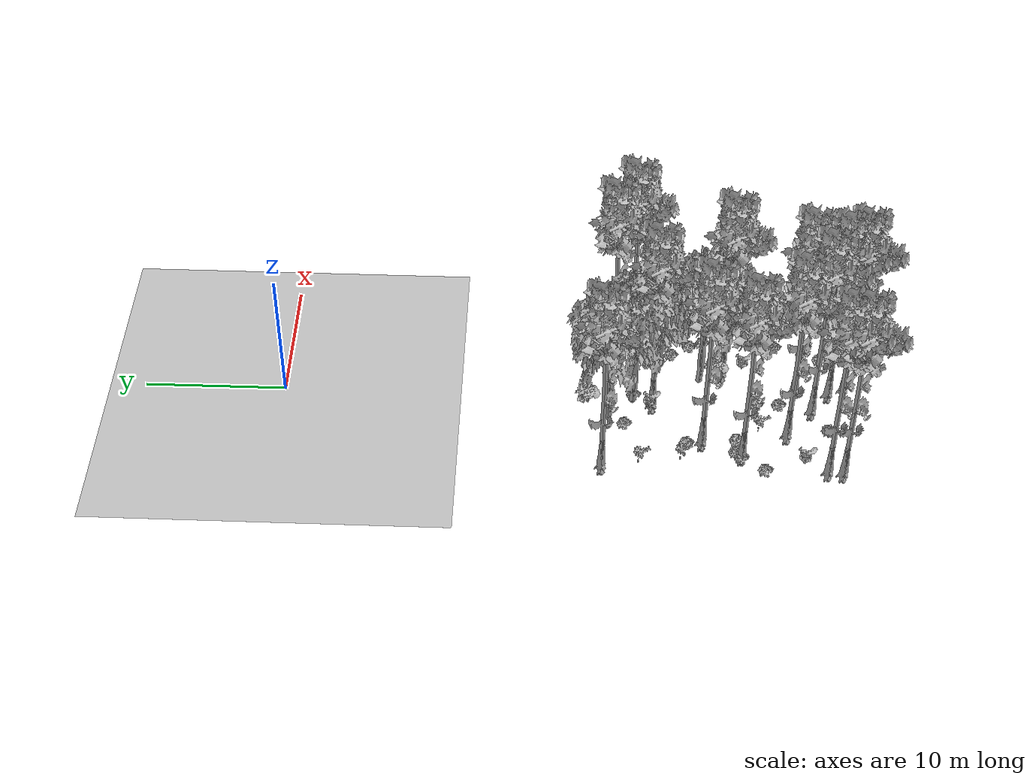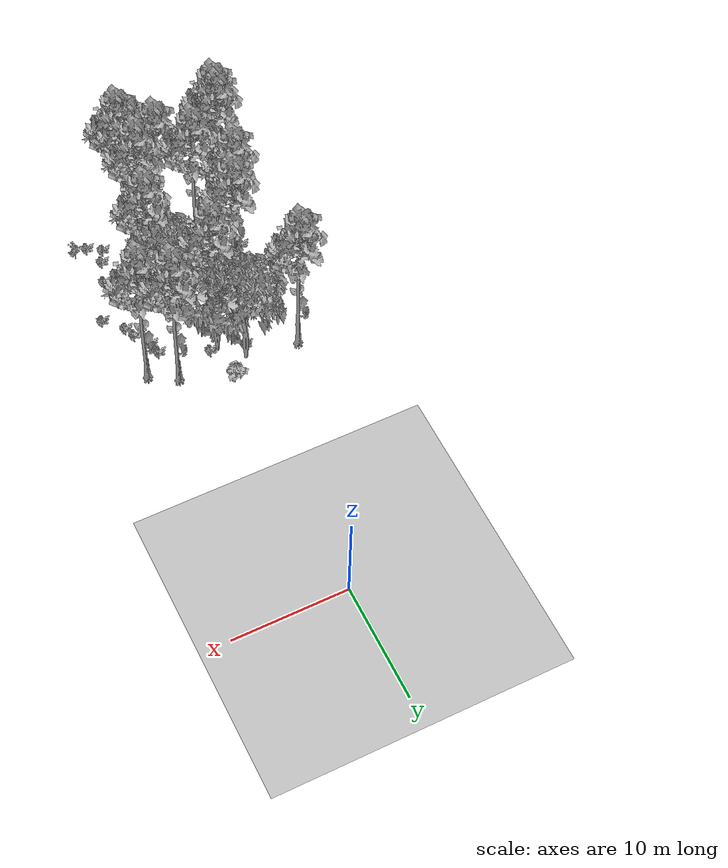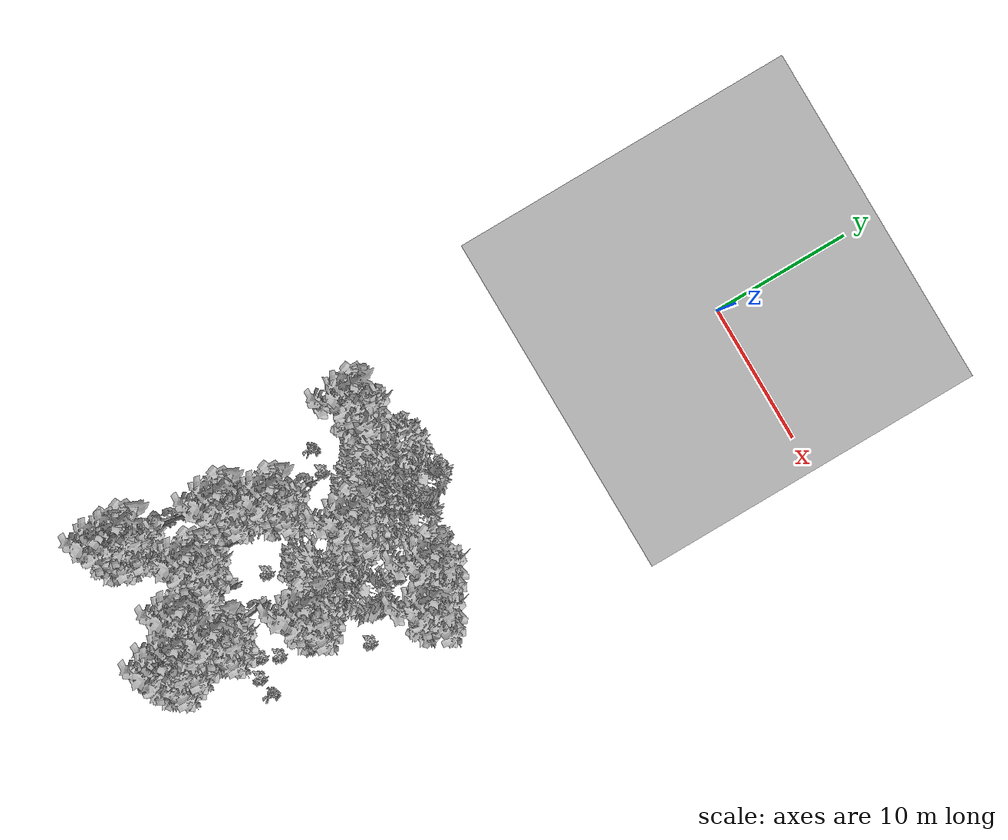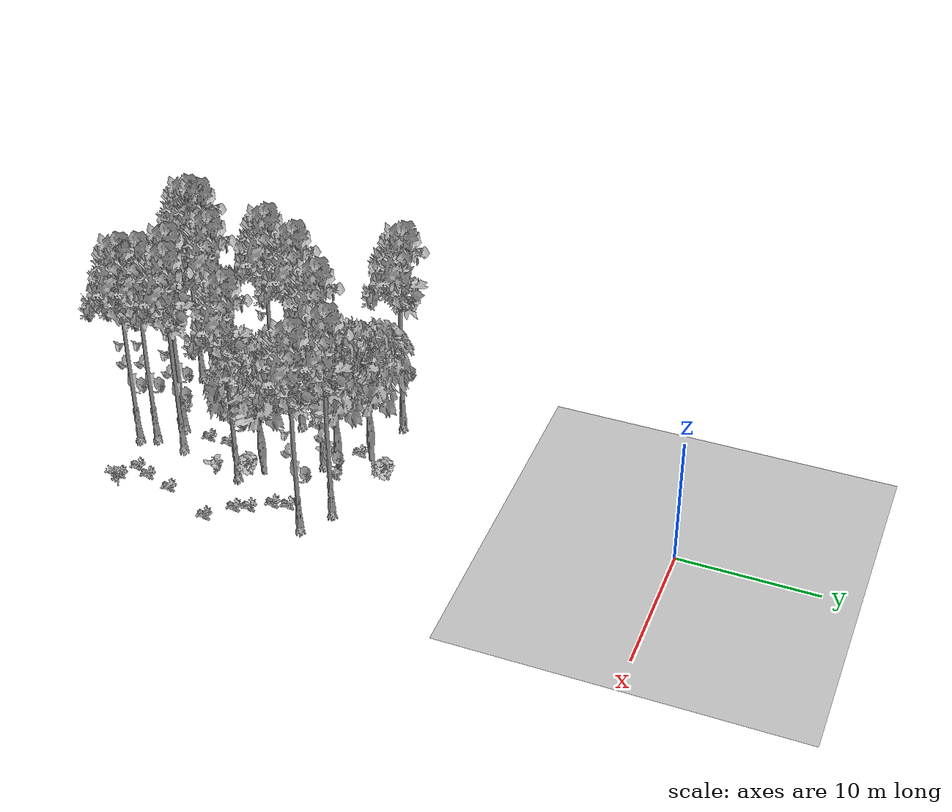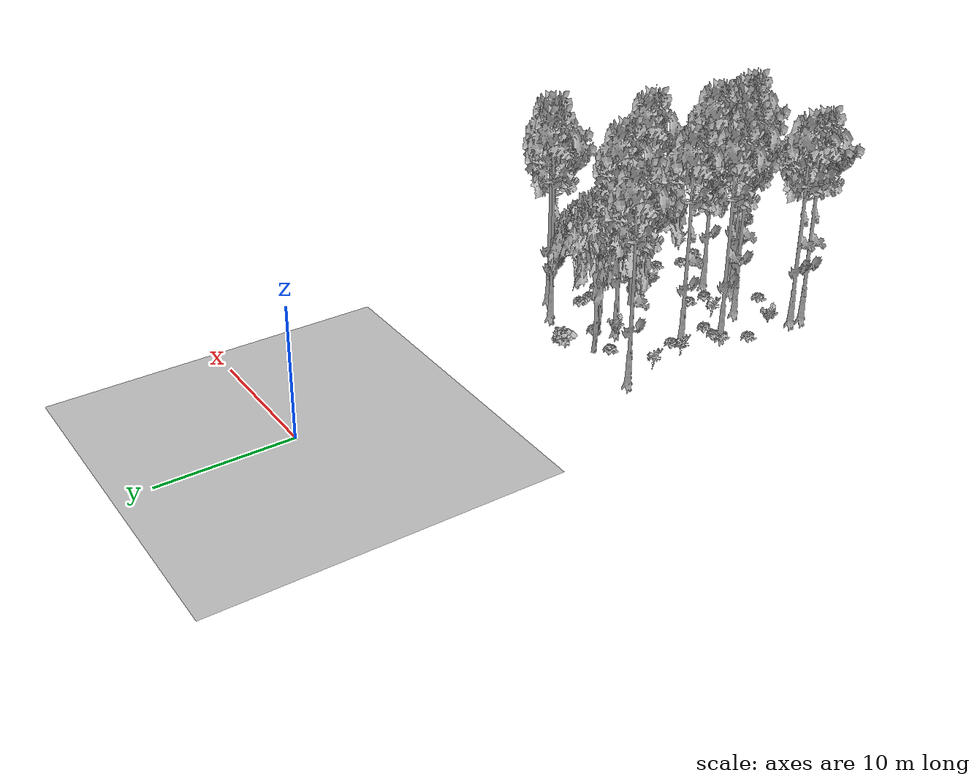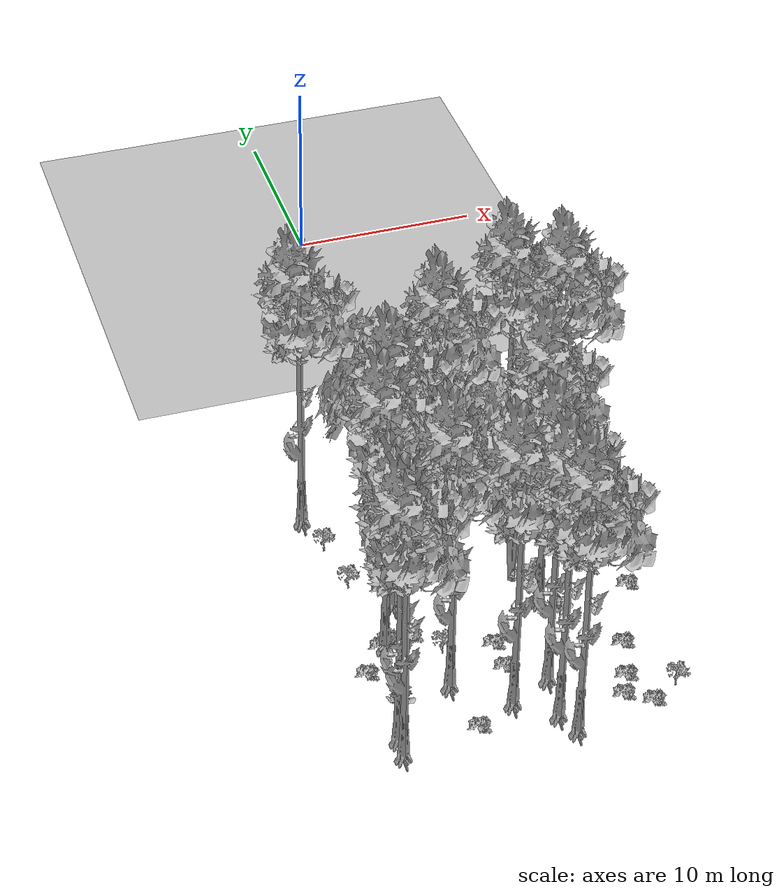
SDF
<sdf version="1.7">
 <world name="default">
  <model name="ground_plane">
   <static>1</static>
   <link name="link">
    <collision name="collision">
     <pose>-50 0 0 0 -0 0</pose>
     <geometry><plane><normal>0 0 1</normal><size>80 80</size></plane></geometry>
     <surface><contact><ode><min_depth>0.01</min_depth><max_vel>0</max_vel></ode></contact></surface>
    </collision>
    <visual name="grass">
     <cast_shadows>0</cast_shadows>
     <geometry>
      <mesh>
       <scale>0.46714285714285714 0.46714285714285714 0.1</scale>
       <uri>file://grass_plane/meshes/grass_plane.dae</uri>
      </mesh>
     </geometry>
    </visual>
   </link>
  </model>
  <model name="Tree 28">
   <static>1</static>
   <pose>-0.35004795752335127 -24.8608026252684 0 1.57079 -0 0</pose>
   <link name="link">
    <collision name="collision">
     <geometry><mesh><scale>3.5 5 3.5</scale><uri>model://tree_2/meshes/tree_2.obj</uri></mesh></geometry>
    </collision>
    <visual name="visual">
     <geometry><mesh><scale>3.5 5 3.5</scale><uri>model://tree_2/meshes/tree_2.obj</uri></mesh></geometry>
    </visual>
   </link>
  </model>
  <model name="Tree 94">
   <static>1</static>
   <pose>-3.228023778062635 -35.577913593681544 0 1.57079 -0 0</pose>
   <link name="link">
    <collision name="collision">
     <geometry><mesh><scale>3.5 5 3.5</scale><uri>model://tree_9/meshes/tree_9.obj</uri></mesh></geometry>
    </collision>
    <visual name="visual">
     <geometry><mesh><scale>3.5 5 3.5</scale><uri>model://tree_9/meshes/tree_9.obj</uri></mesh></geometry>
    </visual>
   </link>
  </model>
  <model name="Tree 98">
   <static>1</static>
   <pose>6.0714699506516325 -24.897921704835273 0 1.57079 -0 0</pose>
   <link name="link">
    <collision name="collision">
     <geometry><mesh><scale>3.5 5 3.5</scale><uri>model://tree_9/meshes/tree_9.obj</uri></mesh></geometry>
    </collision>
    <visual name="visual">
     <geometry><mesh><scale>3.5 5 3.5</scale><uri>model://tree_9/meshes/tree_9.obj</uri></mesh></geometry>
    </visual>
   </link>
  </model>
  <model name="Tree 110">
   <static>1</static>
   <pose>-6.6040914530823756 -22.57773959028632 0 1.57079 -0 0</pose>
   <link name="link">
    <collision name="collision">
     <geometry><mesh><scale>3.5 5 3.5</scale><uri>model://tree_9/meshes/tree_9.obj</uri></mesh></geometry>
    </collision>
    <visual name="visual">
     <geometry><mesh><scale>3.5 5 3.5</scale><uri>model://tree_9/meshes/tree_9.obj</uri></mesh></geometry>
    </visual>
   </link>
  </model>
  <model name="Tree 134">
   <static>1</static>
   <pose>0.9733004366003541 -38.81523096433214 0 1.57079 -0 0</pose>
   <link name="link">
    <collision name="collision">
     <geometry><mesh><scale>3.5 5 3.5</scale><uri>model://tree_9/meshes/tree_9.obj</uri></mesh></geometry>
    </collision>
    <visual name="visual">
     <geometry><mesh><scale>3.5 5 3.5</scale><uri>model://tree_9/meshes/tree_9.obj</uri></mesh></geometry>
    </visual>
   </link>
  </model>
  <model name="Tree 158">
   <static>1</static>
   <pose>-2.1560380082240655 -23.12411436678567 0 1.57079 -0 0</pose>
   <link name="link">
    <collision name="collision">
     <geometry><mesh><scale>3.5 5 3.5</scale><uri>model://tree_2/meshes/tree_2.obj</uri></mesh></geometry>
    </collision>
    <visual name="visual">
     <geometry><mesh><scale>3.5 5 3.5</scale><uri>model://tree_2/meshes/tree_2.obj</uri></mesh></geometry>
    </visual>
   </link>
  </model>
  <model name="Tree 274">
   <static>1</static>
   <pose>-4.102650986573003 -29.590613901555074 0 1.57079 -0 0</pose>
   <link name="link">
    <collision name="collision">
     <geometry><mesh><scale>3.5 5 3.5</scale><uri>model://tree_9/meshes/tree_9.obj</uri></mesh></geometry>
    </collision>
    <visual name="visual">
     <geometry><mesh><scale>3.5 5 3.5</scale><uri>model://tree_9/meshes/tree_9.obj</uri></mesh></geometry>
    </visual>
   </link>
  </model>
  <model name="Tree 332">
   <static>1</static>
   <pose>3.8407860990339913 -23.505030935545825 0 1.57079 -0 0</pose>
   <link name="link">
    <collision name="collision">
     <geometry><mesh><scale>3.5 5 3.5</scale><uri>model://tree_9/meshes/tree_9.obj</uri></mesh></geometry>
    </collision>
    <visual name="visual">
     <geometry><mesh><scale>3.5 5 3.5</scale><uri>model://tree_9/meshes/tree_9.obj</uri></mesh></geometry>
    </visual>
   </link>
  </model>
  <model name="Tree 376">
   <static>1</static>
   <pose>1.8607842351019173 -29.678774806075367 0 1.57079 -0 0</pose>
   <link name="link">
    <collision name="collision">
     <geometry><mesh><scale>3.5 5 3.5</scale><uri>model://tree_2/meshes/tree_2.obj</uri></mesh></geometry>
    </collision>
    <visual name="visual">
     <geometry><mesh><scale>3.5 5 3.5</scale><uri>model://tree_2/meshes/tree_2.obj</uri></mesh></geometry>
    </visual>
   </link>
  </model>
  <model name="Tree 456">
   <static>1</static>
   <pose>1.4662041682643476 -39.965928214971555 0 1.57079 -0 0</pose>
   <link name="link">
    <collision name="collision">
     <geometry><mesh><scale>3.5 5 3.5</scale><uri>model://tree_9/meshes/tree_9.obj</uri></mesh></geometry>
    </collision>
    <visual name="visual">
     <geometry><mesh><scale>3.5 5 3.5</scale><uri>model://tree_9/meshes/tree_9.obj</uri></mesh></geometry>
    </visual>
   </link>
  </model>
  <model name="Tree 516">
   <static>1</static>
   <pose>1.2992492899828392 -36.465847893020396 0 1.57079 -0 0</pose>
   <link name="link">
    <collision name="collision">
     <geometry><mesh><scale>3.5 5 3.5</scale><uri>model://tree_9/meshes/tree_9.obj</uri></mesh></geometry>
    </collision>
    <visual name="visual">
     <geometry><mesh><scale>3.5 5 3.5</scale><uri>model://tree_9/meshes/tree_9.obj</uri></mesh></geometry>
    </visual>
   </link>
  </model>
  <model name="Tree 523">
   <static>1</static>
   <pose>-6.677941656169146 -39.1709177209787 0 1.57079 -0 0</pose>
   <link name="link">
    <collision name="collision">
     <geometry><mesh><scale>3.5 5 3.5</scale><uri>model://tree_9/meshes/tree_9.obj</uri></mesh></geometry>
    </collision>
    <visual name="visual">
     <geometry><mesh><scale>3.5 5 3.5</scale><uri>model://tree_9/meshes/tree_9.obj</uri></mesh></geometry>
    </visual>
   </link>
  </model>
  <model name="Tree 526">
   <static>1</static>
   <pose>-0.7942679597277333 -37.48929218629961 0 1.57079 -0 0</pose>
   <link name="link">
    <collision name="collision">
     <geometry><mesh><scale>3.5 5 3.5</scale><uri>model://tree_9/meshes/tree_9.obj</uri></mesh></geometry>
    </collision>
    <visual name="visual">
     <geometry><mesh><scale>3.5 5 3.5</scale><uri>model://tree_9/meshes/tree_9.obj</uri></mesh></geometry>
    </visual>
   </link>
  </model>
  <model name="Tree 537">
   <static>1</static>
   <pose>-0.6117980295319683 -26.211494960041676 0 1.57079 -0 0</pose>
   <link name="link">
    <collision name="collision">
     <geometry><mesh><scale>3.5 5 3.5</scale><uri>model://tree_9/meshes/tree_9.obj</uri></mesh></geometry>
    </collision>
    <visual name="visual">
     <geometry><mesh><scale>3.5 5 3.5</scale><uri>model://tree_9/meshes/tree_9.obj</uri></mesh></geometry>
    </visual>
   </link>
  </model>
  <model name="Tree 540">
   <static>1</static>
   <pose>-5.359821932581099 -32.30442362448044 0 1.57079 -0 0</pose>
   <link name="link">
    <collision name="collision">
     <geometry><mesh><scale>3.5 5 3.5</scale><uri>model://tree_9/meshes/tree_9.obj</uri></mesh></geometry>
    </collision>
    <visual name="visual">
     <geometry><mesh><scale>3.5 5 3.5</scale><uri>model://tree_9/meshes/tree_9.obj</uri></mesh></geometry>
    </visual>
   </link>
  </model>
  <model name="Tree 550">
   <static>1</static>
   <pose>2.7567984938920063 -31.34955749039804 0 1.57079 -0 0</pose>
   <link name="link">
    <collision name="collision">
     <geometry><mesh><scale>3.5 5 3.5</scale><uri>model://tree_9/meshes/tree_9.obj</uri></mesh></geometry>
    </collision>
    <visual name="visual">
     <geometry><mesh><scale>3.5 5 3.5</scale><uri>model://tree_9/meshes/tree_9.obj</uri></mesh></geometry>
    </visual>
   </link>
  </model>
  <model name="Tree 637">
   <static>1</static>
   <pose>-6.597392145942223 -38.142250448326536 0 1.57079 -0 0</pose>
   <link name="link">
    <collision name="collision">
     <geometry><mesh><scale>3.5 5 3.5</scale><uri>model://tree_9/meshes/tree_9.obj</uri></mesh></geometry>
    </collision>
    <visual name="visual">
     <geometry><mesh><scale>3.5 5 3.5</scale><uri>model://tree_9/meshes/tree_9.obj</uri></mesh></geometry>
    </visual>
   </link>
  </model>
  <model name="Bush 3">
   <static>1</static>
   <pose>5.521125210237997 -39.28202678002643 0 1.57079 -0 0</pose>
   <link name="link">
    <collision name="collision">
     <geometry><mesh><scale>2 2 2</scale><uri>model://bush_2/meshes/bush_2.obj</uri></mesh></geometry>
     <surface><contact><collide_without_contact>false</collide_without_contact></contact></surface>
    </collision>
    <visual name="visual">
     <geometry><mesh><scale>2 2 2</scale><uri>model://bush_2/meshes/bush_2.obj</uri></mesh></geometry>
    </visual>
   </link>
  </model>
  <model name="Bush 16">
   <static>1</static>
   <pose>-0.3675367399814746 -35.24628562463606 0 1.57079 -0 0</pose>
   <link name="link">
    <collision name="collision">
     <geometry><mesh><scale>2 2 2</scale><uri>model://bush_2/meshes/bush_2.obj</uri></mesh></geometry>
     <surface><contact><collide_without_contact>false</collide_without_contact></contact></surface>
    </collision>
    <visual name="visual">
     <geometry><mesh><scale>2 2 2</scale><uri>model://bush_2/meshes/bush_2.obj</uri></mesh></geometry>
    </visual>
   </link>
  </model>
  <model name="Bush 17">
   <static>1</static>
   <pose>6.842934596740989 -38.67601373014332 0 1.57079 -0 0</pose>
   <link name="link">
    <collision name="collision">
     <geometry><mesh><scale>2 2 2</scale><uri>model://bush_5/meshes/bush_5.obj</uri></mesh></geometry>
     <surface><contact><collide_without_contact>false</collide_without_contact></contact></surface>
    </collision>
    <visual name="visual">
     <geometry><mesh><scale>2 2 2</scale><uri>model://bush_5/meshes/bush_5.obj</uri></mesh></geometry>
    </visual>
   </link>
  </model>
  <model name="Bush 24">
   <static>1</static>
   <pose>-0.835177802570982 -26.007142781201935 0 1.57079 -0 0</pose>
   <link name="link">
    <collision name="collision">
     <geometry><mesh><scale>2 2 2</scale><uri>model://bush_0/meshes/bush_0.obj</uri></mesh></geometry>
     <surface><contact><collide_without_contact>false</collide_without_contact></contact></surface>
    </collision>
    <visual name="visual">
     <geometry><mesh><scale>2 2 2</scale><uri>model://bush_0/meshes/bush_0.obj</uri></mesh></geometry>
    </visual>
   </link>
  </model>
  <model name="Bush 27">
   <static>1</static>
   <pose>0.2789472402041042 -24.950369477482354 0 1.57079 -0 0</pose>
   <link name="link">
    <collision name="collision">
     <geometry><mesh><scale>2 2 2</scale><uri>model://bush_2/meshes/bush_2.obj</uri></mesh></geometry>
     <surface><contact><collide_without_contact>false</collide_without_contact></contact></surface>
    </collision>
    <visual name="visual">
     <geometry><mesh><scale>2 2 2</scale><uri>model://bush_2/meshes/bush_2.obj</uri></mesh></geometry>
    </visual>
   </link>
  </model>
  <model name="Bush 29">
   <static>1</static>
   <pose>4.891215432030563 -37.38537468686049 0 1.57079 -0 0</pose>
   <link name="link">
    <collision name="collision">
     <geometry><mesh><scale>2 2 2</scale><uri>model://bush_2/meshes/bush_2.obj</uri></mesh></geometry>
     <surface><contact><collide_without_contact>false</collide_without_contact></contact></surface>
    </collision>
    <visual name="visual">
     <geometry><mesh><scale>2 2 2</scale><uri>model://bush_2/meshes/bush_2.obj</uri></mesh></geometry>
    </visual>
   </link>
  </model>
  <model name="Bush 70">
   <static>1</static>
   <pose>-5.572909275459736 -32.307662902812424 0 1.57079 -0 0</pose>
   <link name="link">
    <collision name="collision">
     <geometry><mesh><scale>2 2 2</scale><uri>model://bush_2/meshes/bush_2.obj</uri></mesh></geometry>
     <surface><contact><collide_without_contact>false</collide_without_contact></contact></surface>
    </collision>
    <visual name="visual">
     <geometry><mesh><scale>2 2 2</scale><uri>model://bush_2/meshes/bush_2.obj</uri></mesh></geometry>
    </visual>
   </link>
  </model>
  <model name="Bush 73">
   <static>1</static>
   <pose>-2.5980775407242263 -24.240391189324264 0 1.57079 -0 0</pose>
   <link name="link">
    <collision name="collision">
     <geometry><mesh><scale>2 2 2</scale><uri>model://bush_2/meshes/bush_2.obj</uri></mesh></geometry>
     <surface><contact><collide_without_contact>false</collide_without_contact></contact></surface>
    </collision>
    <visual name="visual">
     <geometry><mesh><scale>2 2 2</scale><uri>model://bush_2/meshes/bush_2.obj</uri></mesh></geometry>
    </visual>
   </link>
  </model>
  <model name="Bush 98">
   <static>1</static>
   <pose>-6.7160506081877145 -33.88411545947584 0 1.57079 -0 0</pose>
   <link name="link">
    <collision name="collision">
     <geometry><mesh><scale>2 2 2</scale><uri>model://bush_2/meshes/bush_2.obj</uri></mesh></geometry>
     <surface><contact><collide_without_contact>false</collide_without_contact></contact></surface>
    </collision>
    <visual name="visual">
     <geometry><mesh><scale>2 2 2</scale><uri>model://bush_2/meshes/bush_2.obj</uri></mesh></geometry>
    </visual>
   </link>
  </model>
  <model name="Bush 106">
   <static>1</static>
   <pose>4.333909710114646 -38.523586245416354 0 1.57079 -0 0</pose>
   <link name="link">
    <collision name="collision">
     <geometry><mesh><scale>2 2 2</scale><uri>model://bush_2/meshes/bush_2.obj</uri></mesh></geometry>
     <surface><contact><collide_without_contact>false</collide_without_contact></contact></surface>
    </collision>
    <visual name="visual">
     <geometry><mesh><scale>2 2 2</scale><uri>model://bush_2/meshes/bush_2.obj</uri></mesh></geometry>
    </visual>
   </link>
  </model>
  <model name="Bush 136">
   <static>1</static>
   <pose>4.249319830086613 -26.667728989168225 0 1.57079 -0 0</pose>
   <link name="link">
    <collision name="collision">
     <geometry><mesh><scale>2 2 2</scale><uri>model://bush_2/meshes/bush_2.obj</uri></mesh></geometry>
     <surface><contact><collide_without_contact>false</collide_without_contact></contact></surface>
    </collision>
    <visual name="visual">
     <geometry><mesh><scale>2 2 2</scale><uri>model://bush_2/meshes/bush_2.obj</uri></mesh></geometry>
    </visual>
   </link>
  </model>
  <model name="Bush 139">
   <static>1</static>
   <pose>-4.332099621171693 -28.555763570622776 0 1.57079 -0 0</pose>
   <link name="link">
    <collision name="collision">
     <geometry><mesh><scale>2 2 2</scale><uri>model://bush_2/meshes/bush_2.obj</uri></mesh></geometry>
     <surface><contact><collide_without_contact>false</collide_without_contact></contact></surface>
    </collision>
    <visual name="visual">
     <geometry><mesh><scale>2 2 2</scale><uri>model://bush_2/meshes/bush_2.obj</uri></mesh></geometry>
    </visual>
   </link>
  </model>
  <model name="Bush 151">
   <static>1</static>
   <pose>-2.7978785210255666 -38.56932177063935 0 1.57079 -0 0</pose>
   <link name="link">
    <collision name="collision">
     <geometry><mesh><scale>2 2 2</scale><uri>model://bush_2/meshes/bush_2.obj</uri></mesh></geometry>
     <surface><contact><collide_without_contact>false</collide_without_contact></contact></surface>
    </collision>
    <visual name="visual">
     <geometry><mesh><scale>2 2 2</scale><uri>model://bush_2/meshes/bush_2.obj</uri></mesh></geometry>
    </visual>
   </link>
  </model>
  <model name="Bush 215">
   <static>1</static>
   <pose>-5.0858464327845425 -31.931757612327274 0 1.57079 -0 0</pose>
   <link name="link">
    <collision name="collision">
     <geometry><mesh><scale>2 2 2</scale><uri>model://bush_2/meshes/bush_2.obj</uri></mesh></geometry>
     <surface><contact><collide_without_contact>false</collide_without_contact></contact></surface>
    </collision>
    <visual name="visual">
     <geometry><mesh><scale>2 2 2</scale><uri>model://bush_2/meshes/bush_2.obj</uri></mesh></geometry>
    </visual>
   </link>
  </model>
  <model name="Bush 231">
   <static>1</static>
   <pose>-3.935367979172362 -32.06643504445288 0 1.57079 -0 0</pose>
   <link name="link">
    <collision name="collision">
     <geometry><mesh><scale>2 2 2</scale><uri>model://bush_2/meshes/bush_2.obj</uri></mesh></geometry>
     <surface><contact><collide_without_contact>false</collide_without_contact></contact></surface>
    </collision>
    <visual name="visual">
     <geometry><mesh><scale>2 2 2</scale><uri>model://bush_2/meshes/bush_2.obj</uri></mesh></geometry>
    </visual>
   </link>
  </model>
  <model name="Bush 272">
   <static>1</static>
   <pose>-6.205233438063367 -25.118922884536197 0 1.57079 -0 0</pose>
   <link name="link">
    <collision name="collision">
     <geometry><mesh><scale>2 2 2</scale><uri>model://bush_5/meshes/bush_5.obj</uri></mesh></geometry>
     <surface><contact><collide_without_contact>false</collide_without_contact></contact></surface>
    </collision>
    <visual name="visual">
     <geometry><mesh><scale>2 2 2</scale><uri>model://bush_5/meshes/bush_5.obj</uri></mesh></geometry>
    </visual>
   </link>
  </model>
  <model name="Bush 279">
   <static>1</static>
   <pose>2.4300476735757073 -30.91313371599524 0 1.57079 -0 0</pose>
   <link name="link">
    <collision name="collision">
     <geometry><mesh><scale>2 2 2</scale><uri>model://bush_1/meshes/bush_1.obj</uri></mesh></geometry>
     <surface><contact><collide_without_contact>false</collide_without_contact></contact></surface>
    </collision>
    <visual name="visual">
     <geometry><mesh><scale>2 2 2</scale><uri>model://bush_1/meshes/bush_1.obj</uri></mesh></geometry>
    </visual>
   </link>
  </model>
  <model name="Bush 316">
   <static>1</static>
   <pose>-0.3494811167304661 -33.668592915770205 0 1.57079 -0 0</pose>
   <link name="link">
    <collision name="collision">
     <geometry><mesh><scale>2 2 2</scale><uri>model://bush_2/meshes/bush_2.obj</uri></mesh></geometry>
     <surface><contact><collide_without_contact>false</collide_without_contact></contact></surface>
    </collision>
    <visual name="visual">
     <geometry><mesh><scale>2 2 2</scale><uri>model://bush_2/meshes/bush_2.obj</uri></mesh></geometry>
    </visual>
   </link>
  </model>
  <model name="Bush 318">
   <static>1</static>
   <pose>5.39675265812059 -29.129669789782355 0 1.57079 -0 0</pose>
   <link name="link">
    <collision name="collision">
     <geometry><mesh><scale>2 2 2</scale><uri>model://bush_2/meshes/bush_2.obj</uri></mesh></geometry>
     <surface><contact><collide_without_contact>false</collide_without_contact></contact></surface>
    </collision>
    <visual name="visual">
     <geometry><mesh><scale>2 2 2</scale><uri>model://bush_2/meshes/bush_2.obj</uri></mesh></geometry>
    </visual>
   </link>
  </model>
  <model name="Bush 343">
   <static>1</static>
   <pose>-0.4707603421779254 -21.689186157296987 0 1.57079 -0 0</pose>
   <link name="link">
    <collision name="collision">
     <geometry><mesh><scale>2 2 2</scale><uri>model://bush_1/meshes/bush_1.obj</uri></mesh></geometry>
     <surface><contact><collide_without_contact>false</collide_without_contact></contact></surface>
    </collision>
    <visual name="visual">
     <geometry><mesh><scale>2 2 2</scale><uri>model://bush_1/meshes/bush_1.obj</uri></mesh></geometry>
    </visual>
   </link>
  </model>
  <model name="Bush 419">
   <static>1</static>
   <pose>4.469799626389836 -27.753183847965825 0 1.57079 -0 0</pose>
   <link name="link">
    <collision name="collision">
     <geometry><mesh><scale>2 2 2</scale><uri>model://bush_2/meshes/bush_2.obj</uri></mesh></geometry>
     <surface><contact><collide_without_contact>false</collide_without_contact></contact></surface>
    </collision>
    <visual name="visual">
     <geometry><mesh><scale>2 2 2</scale><uri>model://bush_2/meshes/bush_2.obj</uri></mesh></geometry>
    </visual>
   </link>
  </model>
  <model name="Bush 439">
   <static>1</static>
   <pose>5.54043194493476 -35.34439059996657 0 1.57079 -0 0</pose>
   <link name="link">
    <collision name="collision">
     <geometry><mesh><scale>2 2 2</scale><uri>model://bush_2/meshes/bush_2.obj</uri></mesh></geometry>
     <surface><contact><collide_without_contact>false</collide_without_contact></contact></surface>
    </collision>
    <visual name="visual">
     <geometry><mesh><scale>2 2 2</scale><uri>model://bush_2/meshes/bush_2.obj</uri></mesh></geometry>
    </visual>
   </link>
  </model>
  <model name="Bush 481">
   <static>1</static>
   <pose>-2.89487568494593 -33.561152227978866 0 1.57079 -0 0</pose>
   <link name="link">
    <collision name="collision">
     <geometry><mesh><scale>2 2 2</scale><uri>model://bush_5/meshes/bush_5.obj</uri></mesh></geometry>
     <surface><contact><collide_without_contact>false</collide_without_contact></contact></surface>
    </collision>
    <visual name="visual">
     <geometry><mesh><scale>2 2 2</scale><uri>model://bush_5/meshes/bush_5.obj</uri></mesh></geometry>
    </visual>
   </link>
  </model>
  <model name="Bush 503">
   <static>1</static>
   <pose>-5.845481403800804 -28.015341806430698 0 1.57079 -0 0</pose>
   <link name="link">
    <collision name="collision">
     <geometry><mesh><scale>2 2 2</scale><uri>model://bush_5/meshes/bush_5.obj</uri></mesh></geometry>
     <surface><contact><collide_without_contact>false</collide_without_contact></contact></surface>
    </collision>
    <visual name="visual">
     <geometry><mesh><scale>2 2 2</scale><uri>model://bush_5/meshes/bush_5.obj</uri></mesh></geometry>
    </visual>
   </link>
  </model>
  <model name="Bush 548">
   <static>1</static>
   <pose>7.2530689254783525 -31.646767113147707 0 1.57079 -0 0</pose>
   <link name="link">
    <collision name="collision">
     <geometry><mesh><scale>2 2 2</scale><uri>model://bush_2/meshes/bush_2.obj</uri></mesh></geometry>
     <surface><contact><collide_without_contact>false</collide_without_contact></contact></surface>
    </collision>
    <visual name="visual">
     <geometry><mesh><scale>2 2 2</scale><uri>model://bush_2/meshes/bush_2.obj</uri></mesh></geometry>
    </visual>
   </link>
  </model>
  <model name="Bush 588">
   <static>1</static>
   <pose>3.297810058848313 -32.80954521321944 0 1.57079 -0 0</pose>
   <link name="link">
    <collision name="collision">
     <geometry><mesh><scale>2 2 2</scale><uri>model://bush_0/meshes/bush_0.obj</uri></mesh></geometry>
     <surface><contact><collide_without_contact>false</collide_without_contact></contact></surface>
    </collision>
    <visual name="visual">
     <geometry><mesh><scale>2 2 2</scale><uri>model://bush_0/meshes/bush_0.obj</uri></mesh></geometry>
    </visual>
   </link>
  </model>
  <model name="Bush 610">
   <static>1</static>
   <pose>5.785378620564842 -30.08698655195306 0 1.57079 -0 0</pose>
   <link name="link">
    <collision name="collision">
     <geometry><mesh><scale>2 2 2</scale><uri>model://bush_2/meshes/bush_2.obj</uri></mesh></geometry>
     <surface><contact><collide_without_contact>false</collide_without_contact></contact></surface>
    </collision>
    <visual name="visual">
     <geometry><mesh><scale>2 2 2</scale><uri>model://bush_2/meshes/bush_2.obj</uri></mesh></geometry>
    </visual>
   </link>
  </model>
  <model name="Bush 619">
   <static>1</static>
   <pose>-5.844799151130168 -36.58423828959825 0 1.57079 -0 0</pose>
   <link name="link">
    <collision name="collision">
     <geometry><mesh><scale>2 2 2</scale><uri>model://bush_0/meshes/bush_0.obj</uri></mesh></geometry>
     <surface><contact><collide_without_contact>false</collide_without_contact></contact></surface>
    </collision>
    <visual name="visual">
     <geometry><mesh><scale>2 2 2</scale><uri>model://bush_0/meshes/bush_0.obj</uri></mesh></geometry>
    </visual>
   </link>
  </model>
 </world>
</sdf>
